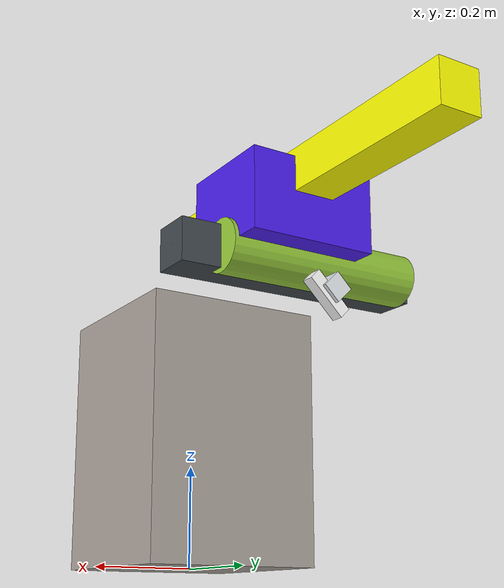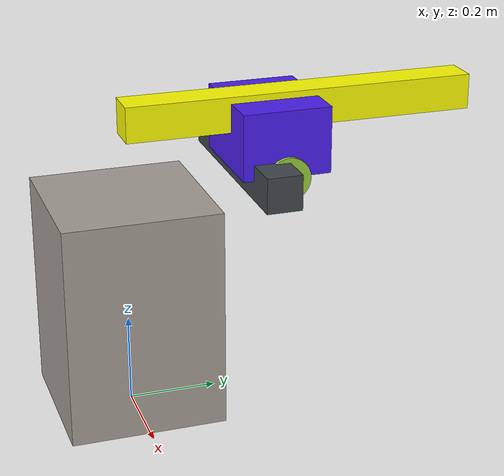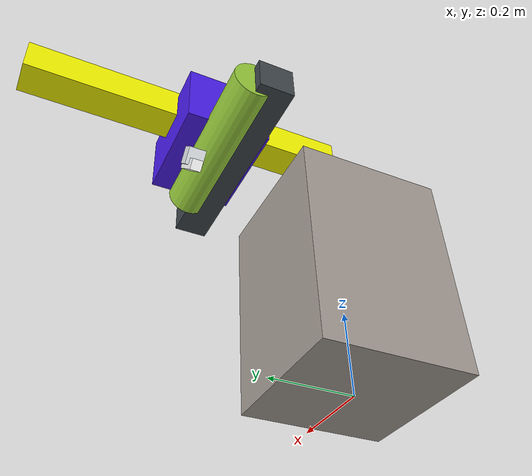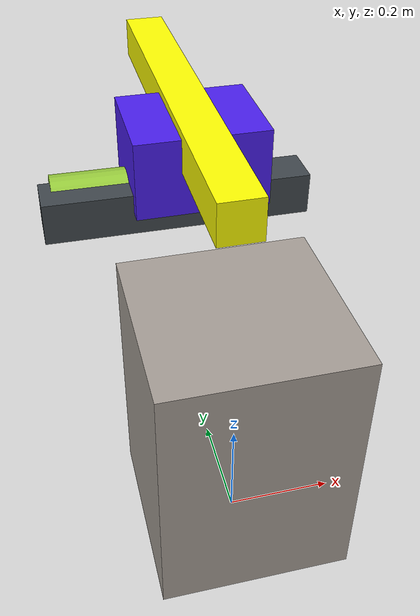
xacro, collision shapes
<?xml version="1.0"?>
<robot xmlns:xacro="http://www.ros.org/wiki/xacro" name="MG6010">

  <!-- Base Link -->
  <link name="base_link">
    <inertial>
      <origin xyz="-0.001334 0 0.18943" rpy="0 0 0"/>
      <mass value="29.128"/>
      <inertia ixx="2.1068" ixy="0" ixz="-0.0069722"
               iyy="2.1115" iyz="0" izz="0.22457"/>
    </inertial>
    <visual name="base_link_visual">
      <origin xyz="0 0 0" rpy="0 0 0"/>
      <geometry>
        <mesh filename="package://robot_description/meshes/base_link.STL"/>
      </geometry>
      <material name="base_material">
        <color rgba="0.65098 0.61961 0.58824 1"/>
      </material>
    </visual>
    <collision name="base_link_collision">
      <origin xyz="0 0 0.25" rpy="0 0 0"/>
      <geometry>
        <box size="0.35 0.35 0.5"/>
      </geometry>
    </collision>
  </link>

  <!-- Link2 - vertical prismatic -->
  <link name="link2">
    <inertial>
      <origin xyz="0.0023258 0.39197 0.0012124" rpy="0 0 0"/>
      <mass value="7.2824"/>
      <inertia ixx="0.56505" ixy="-0.0011051" ixz="0.00023875"
               iyy="0.0071252" iyz="-0.00046822" izz="0.56327"/>
    </inertial>
    <visual name="link2_visual">
      <origin xyz="0 0 -0.445" rpy="0 0 0"/>
      <geometry>
        <mesh filename="package://robot_description/meshes/link2.STL"/>
      </geometry>
      <material name="yellow">
        <color rgba="1 1 0 1"/>
      </material>
    </visual>
    <collision name="link2_collision">
      <origin xyz="0 0.4 0" rpy="0 0 0"/>
      <geometry>
        <box size="0.08 0.8 0.08"/>
      </geometry>
    </collision>
  </link>

  <joint name="joint2" type="prismatic">
    <origin xyz="0 0 0.45922" rpy="0 0 0"/>
    <parent link="base_link"/>
    <child link="link2"/>
    <axis xyz="0 0 1"/>
    <limit lower="0.1" upper="0.32" effort="1000" velocity="0.5"/>
    <dynamics damping="50.0" friction="10.0"/>
  </joint>

  <!-- Link4 - horizontal prismatic -->
  <link name="link4">
    <inertial>
      <origin xyz="-0.044144 0.0378 -0.072925" rpy="0 0 0"/>
      <mass value="0.86357"/>
      <inertia ixx="0.0063398" ixy="0.00091722" ixz="-0.0017328"
               iyy="0.0061419" iyz="0.0015638" izz="0.0031822"/>
    </inertial>
    <visual name="link4_visual">
      <origin xyz="0.008 -0.334 -0.459" rpy="0 0 0"/>
      <geometry>
        <mesh filename="package://robot_description/meshes/link4.STL"/>
      </geometry>
      <material name="purple">
        <color rgba="0.29216 0.11961 0.93333 1"/>
      </material>
    </visual>
    <collision name="link4_collision">
      <origin xyz="0 0 -0.05" rpy="0 0 0"/>
      <geometry>
        <box size="0.25 0.2 0.15"/>
      </geometry>
    </collision>
  </link>

  <joint name="joint4" type="prismatic">
    <origin xyz="0 0.33411 0" rpy="0 0 0"/>
    <parent link="link2"/>
    <child link="link4"/>
    <axis xyz="0 1 0"/>
    <limit lower="-0.25" upper="0.35" effort="1000" velocity="0.5"/>
    <dynamics damping="50.0" friction="10.0"/>
  </joint>

  <!-- Link7 - fixed to link4 -->
  <link name="link7">
    <inertial>
      <origin xyz="-0.004 0.0041238 0" rpy="0 0 0"/>
      <mass value="0.05924"/>
      <inertia ixx="4.4262E-05" ixy="0" ixz="0"
               iyy="4.0102E-05" iyz="0" izz="4.7957E-06"/>
    </inertial>
    <visual name="link7_visual">
      <origin xyz="0.234 -0.395 -0.144" rpy="0 -0.7854 1.5708"/>
      <geometry>
        <mesh filename="package://robot_description/meshes/link7.STL"/>
      </geometry>
      <material name="white">
        <color rgba="0.89804 0.91765 0.92941 1"/>
      </material>
    </visual>
    <collision name="link7_collision">
      <origin xyz="0 0 0" rpy="0 0 0"/>
      <geometry>
        <box size="0.04 0.04 0.04"/>
      </geometry>
    </collision>
  </link>

  <joint name="joint7" type="fixed">
    <origin xyz="-0.062994 0.061 -0.19179" rpy="0 0.7854 0"/>
    <parent link="link4"/>
    <child link="link7"/>
  </joint>

  <!-- Camera mount link -->
  <link name="camera_mount_link">
    <inertial>
      <origin xyz="-0.0041238 0 -0.004" rpy="0 0 0"/>
      <mass value="0.05924"/>
      <inertia ixx="4.0102E-05" ixy="0" ixz="0"
               iyy="4.7957E-06" iyz="0" izz="4.4262E-05"/>
    </inertial>
    <visual>
      <origin xyz="0 0 0" rpy="0 0 0"/>
      <geometry>
        <box size="0.001 0.001 0.001"/>
      </geometry>
      <material name="white_mat">
        <color rgba="0.89804 0.91765 0.92941 1"/>
      </material>
    </visual>
    <collision>
      <origin xyz="0 0 0" rpy="0 0 0"/>
      <geometry>
        <box size="0.02 0.02 0.02"/>
      </geometry>
    </collision>
  </link>

  <joint name="camera_mount_joint" type="fixed">
    <origin xyz="0 0 0" rpy="-1.5708 0 -1.5708"/>
    <parent link="link7"/>
    <child link="camera_mount_link"/>
  </joint>

  <!-- Link3 - revolute joint -->
  <link name="link3">
    <inertial>
      <origin xyz="-0.033163 -0.04027 -0.0050659" rpy="0 0 0"/>
      <mass value="1.4316"/>
      <inertia ixx="0.0037572" ixy="-0.00082268" ixz="-0.0011479"
               iyy="0.043868" iyz="-0.00017008" izz="0.044751"/>
    </inertial>
    <visual>
      <origin xyz="0.069 -0.378 -0.330" rpy="0 0 0"/>
      <geometry>
        <mesh filename="package://robot_description/meshes/link3.STL"/>
      </geometry>
      <material name="green">
        <color rgba="0.59216 0.79608 0.23333 1"/>
      </material>
    </visual>
    <collision>
      <origin xyz="0 -0.04 0" rpy="0 1.5708 0"/>
      <geometry>
        <cylinder radius="0.05" length="0.4"/>
      </geometry>
    </collision>
  </link>

  <joint name="joint3" type="revolute">
    <origin xyz="-0.0675 0.042 -0.127" rpy="0 0.0063952 0"/>
    <parent link="link4"/>
    <child link="link3"/>
    <axis xyz="0 -1 0"/>
    <limit lower="-1.5708" upper="0.0" effort="1000" velocity="1.0"/>
  </joint>

  <!-- Yanthra link -->
  <link name="yanthra_link">
    <inertial>
      <origin xyz="-0.033163 0.04173 -0.0050659" rpy="0 0 0"/>
      <mass value="1.4316"/>
      <inertia ixx="0.0037572" ixy="-0.00082268" ixz="-0.0011479"
               iyy="0.043868" iyz="-0.00017008" izz="0.044751"/>
    </inertial>
    <visual>
      <origin xyz="0 0 0" rpy="0 0 0"/>
      <geometry>
        <box size="0.001 0.001 0.001"/>
      </geometry>
      <material name="white_mat2">
        <color rgba="0.89804 0.91765 0.92941 1"/>
      </material>
    </visual>
    <collision>
      <origin xyz="0 0 0" rpy="0 0 0"/>
      <geometry>
        <box size="0.001 0.001 0.001"/>
      </geometry>
    </collision>
  </link>

  <joint name="yantra_joint" type="fixed">
    <origin xyz="0 -0.082 0" rpy="0 0 0"/>
    <parent link="link3"/>
    <child link="yanthra_link"/>
  </joint>

  <!-- Camera link -->
  <link name="camera_link">
    <inertial>
      <origin xyz="0 0 0" rpy="0 0 0"/>
      <mass value="0.044809"/>
      <inertia ixx="3.1898E-05" ixy="0" ixz="0"
               iyy="4.0973E-06" iyz="0" izz="3.3708E-05"/>
    </inertial>
    <visual>
      <origin xyz="0.395 -0.145 -0.2335" rpy="0 0.7854 1.5708"/>
      <geometry>
        <mesh filename="package://robot_description/meshes/camera_link.STL"/>
      </geometry>
      <material name="camera_white">
        <color rgba="1 1 1 1"/>
      </material>
    </visual>
    <collision>
      <origin xyz="0 0 0" rpy="0 0 0"/>
      <geometry>
        <box size="0.025 0.09 0.025"/>
      </geometry>
    </collision>
  </link>

  <joint name="camera_link_joint" type="fixed">
    <origin xyz="0.016845 0.100461 -0.077129" rpy="1.5708 0.785398 0"/>
    <parent link="yanthra_link"/>
    <child link="camera_link"/>
  </joint>

  <!-- Link5 origin -->
  <link name="link5_origin">
    <inertial>
      <origin xyz="-0.033163 0.04173 -0.0050659" rpy="0 0 0"/>
      <mass value="0.001"/>
      <inertia ixx="1e-6" ixy="0" ixz="0" iyy="1e-6" iyz="0" izz="1e-6"/>
    </inertial>
    <visual>
      <origin xyz="0 0 0" rpy="0 0 0"/>
      <geometry>
        <box size="0.001 0.001 0.001"/>
      </geometry>
      <material name="white_mat3">
        <color rgba="0.89804 0.91765 0.92941 1"/>
      </material>
    </visual>
    <collision>
      <origin xyz="0 0 0" rpy="0 0 0"/>
      <geometry>
        <box size="0.001 0.001 0.001"/>
      </geometry>
    </collision>
  </link>

  <joint name="link5_origin_joint" type="fixed">
    <origin xyz="0 0 0" rpy="0 0 0"/>
    <parent link="yanthra_link"/>
    <child link="link5_origin"/>
  </joint>

  <!-- Link5 - gripper prismatic -->
  <link name="link5">
    <inertial>
      <origin xyz="-0.24702 0.0038414 0.0022102" rpy="0 0 0"/>
      <mass value="0.50477"/>
      <inertia ixx="0.00073373" ixy="0.00051748" ixz="-0.00013446"
               iyy="0.014642" iyz="4.7355E-06" izz="0.014712"/>
    </inertial>
    <visual>
      <origin xyz="-0.209 -0.300 -0.329" rpy="0 0 0"/>
      <geometry>
        <mesh filename="package://robot_description/meshes/link5.STL"/>
      </geometry>
      <material name="black">
        <color rgba="0.25 0.28 0.3 1"/>
      </material>
    </visual>
    <collision>
      <origin xyz="-0.25 0 0" rpy="0 0 0"/>
      <geometry>
        <box size="0.5 0.08 0.08"/>
      </geometry>
    </collision>
  </link>

  <joint name="joint5" type="prismatic">
    <origin xyz="0.27774 0.00375 -0.001" rpy="0 0 0"/>
    <parent link="link5_origin"/>
    <child link="link5"/>
    <axis xyz="1 0 0"/>
    <limit lower="0" upper="0.45" effort="100" velocity="0.2"/>
  </joint>

  <!-- End effector link -->
  <link name="ee_link">
    <inertial>
      <origin xyz="0 0 0" rpy="0 0 0"/>
      <mass value="0.001"/>
      <inertia ixx="1e-6" ixy="0" ixz="0" iyy="1e-6" iyz="0" izz="1e-6"/>
    </inertial>
    <visual>
      <origin xyz="0 0 0" rpy="0 0 0"/>
      <geometry>
        <box size="0.001 0.001 0.001"/>
      </geometry>
      <material name="ee_white">
        <color rgba="1 1 1 1"/>
      </material>
    </visual>
    <collision>
      <origin xyz="0 0 0" rpy="0 0 0"/>
      <geometry>
        <box size="0.001 0.001 0.001"/>
      </geometry>
    </collision>
  </link>

  <joint name="ee_joint" type="fixed">
    <origin xyz="0 0 0" rpy="0 0 0"/>
    <parent link="link5"/>
    <child link="ee_link"/>
  </joint>

</robot>
